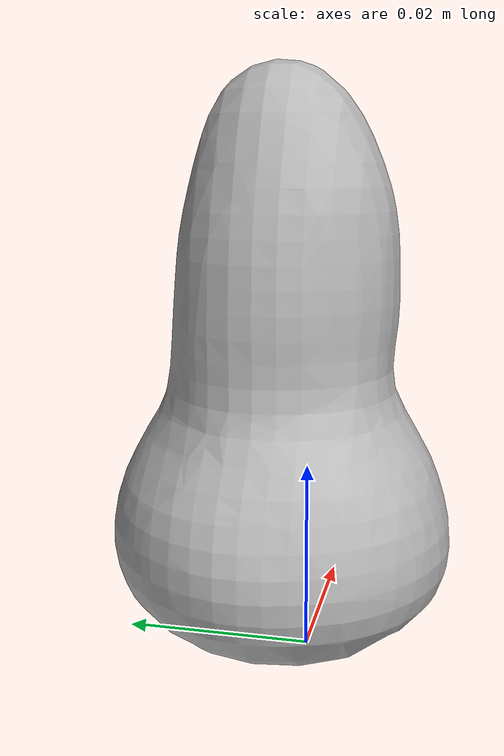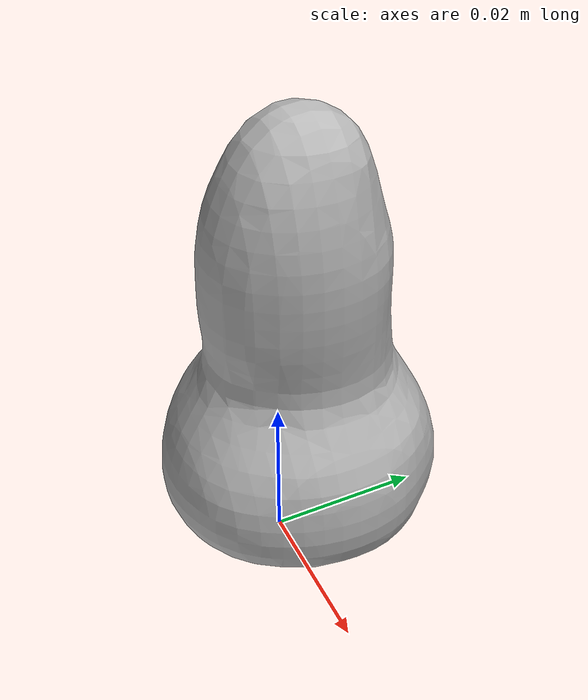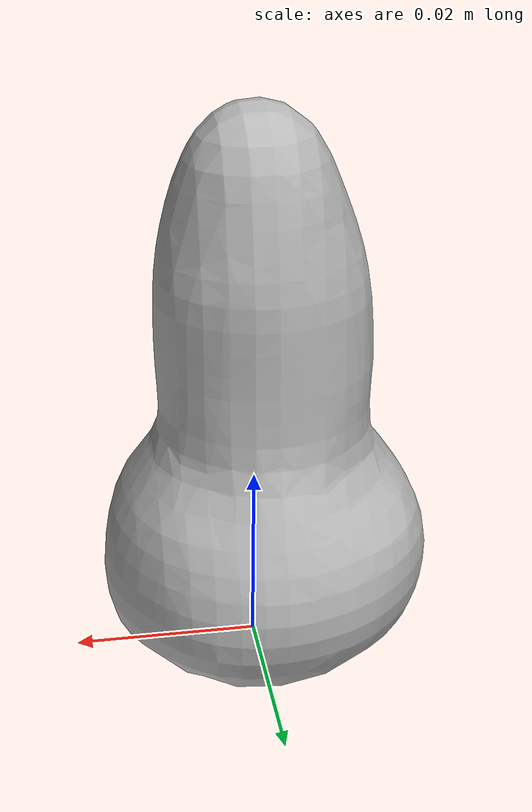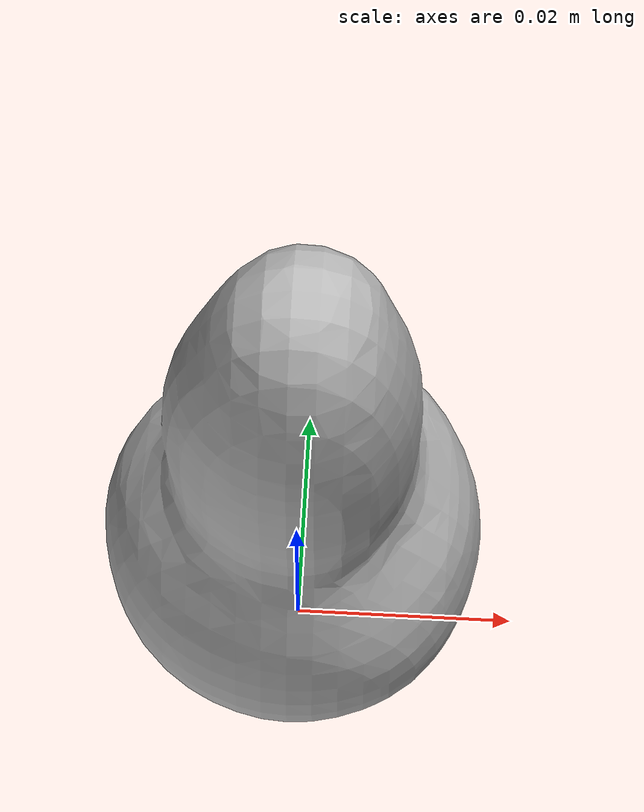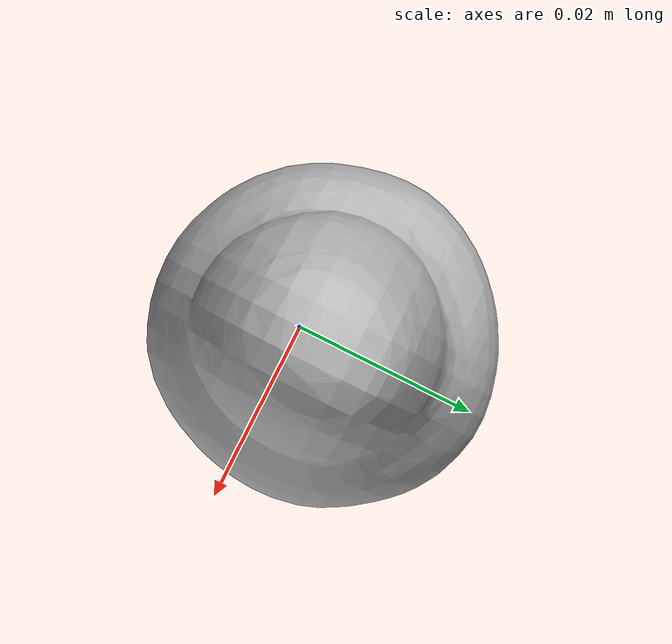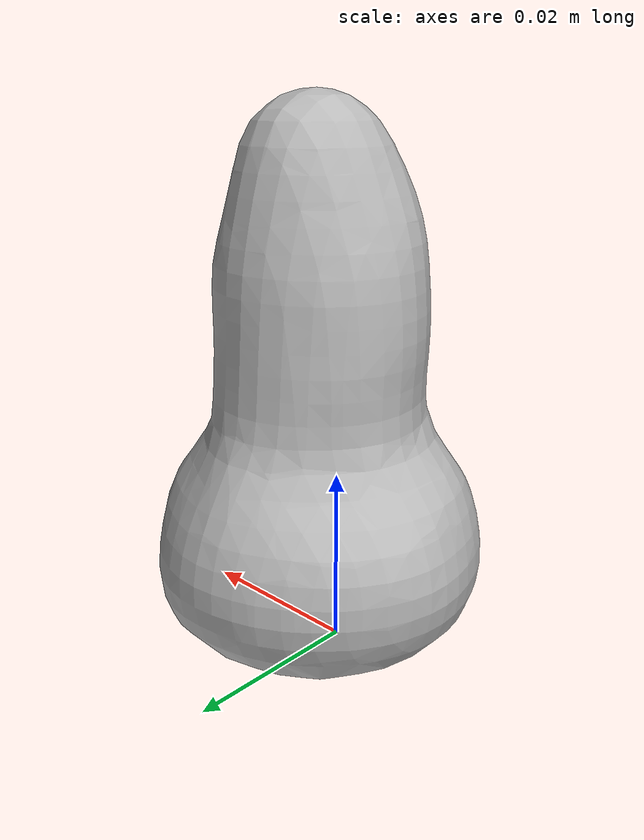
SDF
<?xml version='1.0'?>
<sdf version="1.4">
  <model name="072-j_toy_airplane">
    <static>false</static>
    <link name="link">
      <inertial>
        <pose>-0.000227352981412786 0.0025896755844399 0.02452712715367122 -3.1206299300424303 0.018289376581658218 -0.13160162428643432</pose>
        <mass>0.003165866864408014</mass>
        <inertia>
          <ixx>7.862908392643069e-07</ixx>
          <ixy>6.257274382918182e-23</ixy>
          <ixz>-6.791754576986931e-25</ixz>
          <iyy>7.747017278558986e-07</iyy>
          <iyz>-1.7097157352770267e-22</iyz>
          <izz>3.3636440542741274e-07</izz>
        </inertia>
      </inertial>
      <collision name="collision">
        <geometry>
          <mesh>
            <!-- Use a downsampled mesh for collisions -->
            <uri>model:///072-j_toy_airplane/072-j_toy_airplane_250_collision.stl</uri>
	        </mesh>
        </geometry>
        <surface>
      </surface>
      </collision>
      <visual name="visual">
        <geometry>
          <mesh>
            <uri>model:///072-j_toy_airplane/textured.obj</uri>
	        </mesh>
        </geometry>
        <material>
          <script>
            <uri>model:///072-j_toy_airplane/072-j_toy_airplane.material</uri>
            <name>072-j_toy_airplane</name>
          </script>
        </material>
      </visual>
    </link>
  </model>
</sdf>
